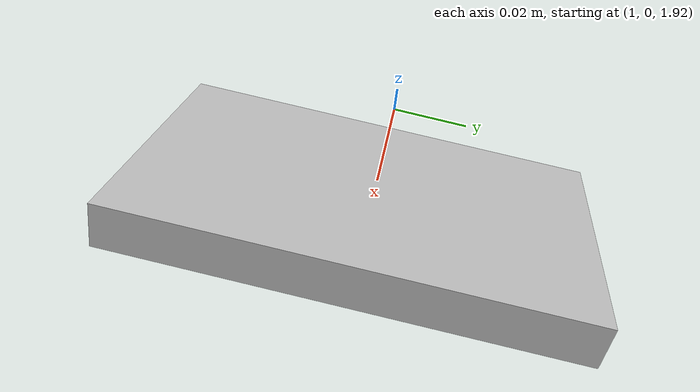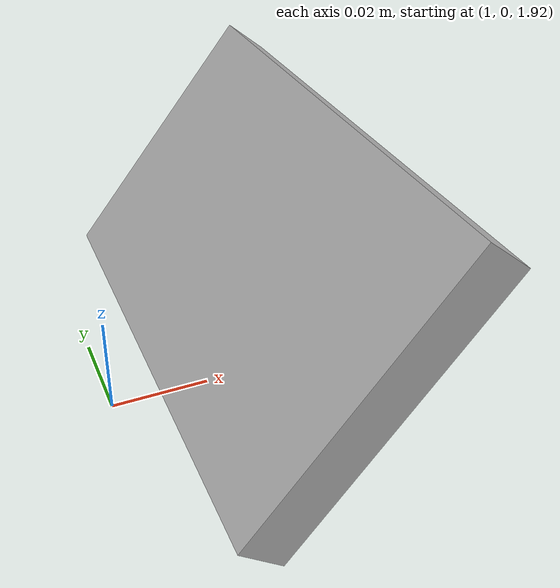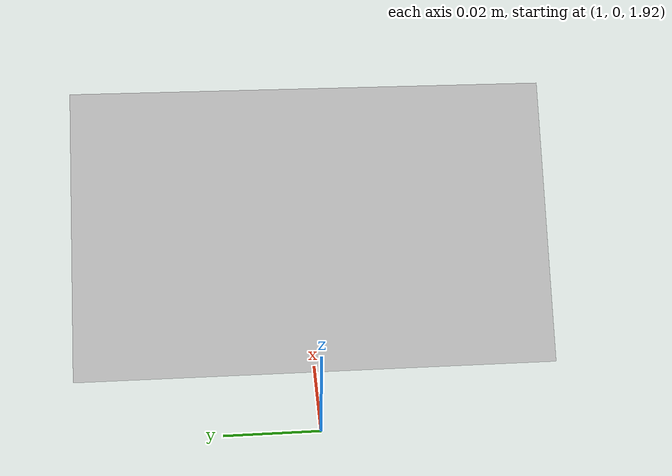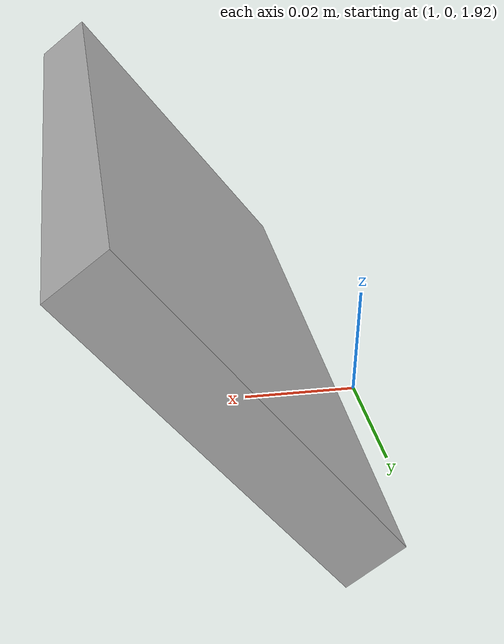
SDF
<?xml version="1.0" ?>
<sdf version="1.6">
  <world name="default">
    <include>
      <uri>model://ground_plane</uri>
    </include>

    <include>
      <uri>model://sun</uri>
    </include>

    <physics type="ode">
      <real_time_update_rate>1000.0</real_time_update_rate>
    </physics>

    <gravity>
      0.0 0.0 -9.81
    </gravity>

    <gui fullscreen='0'>
      <camera name='user_camera'>
        <pose frame=''>2.69836 -0.874828 2.04939 0 0.399643 2.75619</pose>
        <view_controller>orbit</view_controller>
        <projection_type>perspective</projection_type>
      </camera>
    </gui>

    <light name='user_point_light_0' type='point'>
      <pose frame=''>0.573839 -0.613666 1 0 -0 0</pose>
      <diffuse>0.5 0.5 0.5 1</diffuse>
      <specular>0.1 0.1 0.1 1</specular>
      <attenuation>
        <range>20</range>
        <constant>0.5</constant>
        <linear>0.01</linear>
        <quadratic>0.001</quadratic>
      </attenuation>
      <cast_shadows>0</cast_shadows>
      <direction>0 0 -1</direction>
    </light>

    <light name='user_point_light_1' type='point'>
      <pose frame=''>0.573839 -0.613666 1 0 -0 0</pose>
      <diffuse>0.5 0.5 0.5 1</diffuse>
      <specular>0.1 0.1 0.1 1</specular>
      <attenuation>
        <range>20</range>
        <constant>0.5</constant>
        <linear>0.01</linear>
        <quadratic>0.001</quadratic>
      </attenuation>
      <cast_shadows>0</cast_shadows>
      <direction>0 0 -1</direction>
    </light>

    <light name='user_point_light_2' type='point'>
      <pose frame=''>0.573839 -0.613666 1 0 -0 0</pose>
      <diffuse>0.5 0.5 0.5 1</diffuse>
      <specular>0.1 0.1 0.1 1</specular>
      <attenuation>
        <range>20</range>
        <constant>0.5</constant>
        <linear>0.01</linear>
        <quadratic>0.001</quadratic>
      </attenuation>
      <cast_shadows>0</cast_shadows>
      <direction>0 0 -1</direction>
    </light>

    <light name='user_spot_light_0' type='spot'>
      <pose frame=''>-1.7095 -0.748352 1 0 -0 0</pose>
      <diffuse>0.5 0.5 0.5 1</diffuse>
      <specular>0.1 0.1 0.1 1</specular>
      <direction>0 0 -1</direction>
      <attenuation>
        <range>20</range>
        <constant>0.5</constant>
        <linear>0.01</linear>
        <quadratic>0.001</quadratic>
      </attenuation>
      <cast_shadows>0</cast_shadows>
      <spot>
        <inner_angle>0.6</inner_angle>
        <outer_angle>1</outer_angle>
        <falloff>1</falloff>
      </spot>
    </light>

    <model name='rgb_cam'>
      <static>1</static>
      <pose frame=''>1.03 0.0 1.95 0.0 0.897 3.14</pose>
      <link name='rgb_camera'>
        <inertial>
          <mass>0.1</mass>
          <inertia>
            <ixx>8.41666666667e-05</ixx>
            <ixy>0</ixy>
            <ixz>0</ixz>
            <iyy>3.08333333333e-05</iyy>
            <iyz>0</iyz>
            <izz>0.000113333333333</izz>
          </inertia>
        </inertial>
        <collision name='collision'>
          <geometry>
            <box>
              <size>0.060 0.1 0.010</size>
            </box>
          </geometry>
          <max_contacts>10</max_contacts>
          <surface>
            <contact>
              <ode/>
            </contact>
            <bounce/>
            <friction>
              <torsional>
                <ode/>
              </torsional>
              <ode/>
            </friction>
          </surface>
        </collision>
        <visual name='visual'>
          <geometry>
            <box>
              <size>0.060 0.1 0.010</size>
            </box>
          </geometry>
        </visual>
        <sensor name="camera" type="camera">
          <camera>
            <horizontal_fov>1.047</horizontal_fov>
            <image>
              <width>400</width>
              <height>400</height>
              <format>R8G8B8</format>
            </image>
            <clip>
              <near>0.1</near>
              <far>100</far>
            </clip>
          </camera>
          <always_on>1</always_on>
          <update_rate>30</update_rate>
          <visualize>true</visualize>
          <plugin filename="libgazebo_ros_camera.so" name="camera_in_ros">
            <robotNamespace>dynamic_objects</robotNamespace>
            <cameraName>camera</cameraName>
            <imageTopicName>raw_image</imageTopicName>
            <cameraInfoTopicName>info_image</cameraInfoTopicName>
            <FrameName>cameraImage</FrameName>
            <Cy>0</Cy>
            <Cx>0</Cx>
            <updateRate>10.0</updateRate>
          </plugin>
        </sensor>
        <self_collide>0</self_collide>
        <kinematic>0</kinematic>
      </link>
    </model>

    <atmosphere type='adiabatic'/>
    <scene>
      <sky>
        <clouds>
          <speed>12</speed>
        </clouds>
      </sky>
    </scene>

    <plugin name="dynamic_world_plugin" filename="libdynamic_world_plugin.so">
      <update_frequency>1.0</update_frequency>
      <model_to_ignore_randcolours>sawyer,cafe_table,block,rgb_cam,kinect</model_to_ignore_randcolours>
      <model_to_ignore_movement>sawyer,cafe_table,block,ground_plane</model_to_ignore_movement>

          <x_max>0.5</x_max>
          <x_min>0.3</x_min>
          <y_max>0.5</y_max>
          <y_min>0.1</y_min>
          <z_max>0.64</z_max>
          <z_min>0.64</z_min>

          <x_max_distractors>0.5</x_max_distractors>
          <x_min_distractors>0.3</x_min_distractors>
          <y_max_distractors>0.5</y_max_distractors>
          <y_min_distractors>0.1</y_min_distractors>
          <z_max_distractors>0.64</z_max_distractors>
          <z_min_distractors>0.64</z_min_distractors>

          <z_increment_percentage>0.2</z_increment_percentage>

      <roll_max>0.0</roll_max>
      <roll_min>0.0</roll_min>
      <pitch_max>0.0</pitch_max>
      <pitch_min>0.0</pitch_min>
      <yaw_max>0.0</yaw_max>
      <yaw_min>0.0</yaw_min>

      <light_x_max>1.0</light_x_max>
      <light_x_min>-0.1</light_x_min>
      <light_y_max>0.5</light_y_max>
      <light_y_min>-0.5</light_y_min>
      <light_z_max>2.5</light_z_max>
      <light_z_min>1.2</light_z_min>

      <light_roll_max>0.5</light_roll_max>
      <light_roll_min>-0.5</light_roll_min>
      <light_pitch_max>0.5</light_pitch_max>
      <light_pitch_min>-0.5</light_pitch_min>
      <light_yaw_max>0.5</light_yaw_max>
      <light_yaw_min>-0.5</light_yaw_min>

      <cam_x_max>1.05</cam_x_max>
      <cam_x_min>1.03</cam_x_min>
      <cam_y_max>0.03</cam_y_max>
      <cam_y_min>-0.03</cam_y_min>
      <cam_z_max>1.95</cam_z_max>
      <cam_z_min>1.96</cam_z_min>

      <cam_roll_max>0.02</cam_roll_max>
      <cam_roll_min>-0.02</cam_roll_min>
      <cam_pitch_max>0.924</cam_pitch_max>
      <cam_pitch_min>0.897</cam_pitch_min>
      <cam_yaw_max>3.21</cam_yaw_max>
      <cam_yaw_min>3.08</cam_yaw_min>

      <alpha>0.5</alpha>
      <beta>0.5</beta>
      <random_distribution_type>beta_distribution</random_distribution_type>
      <colour_randomiser_active>yes</colour_randomiser_active>
    </plugin>
  </world>
</sdf>
